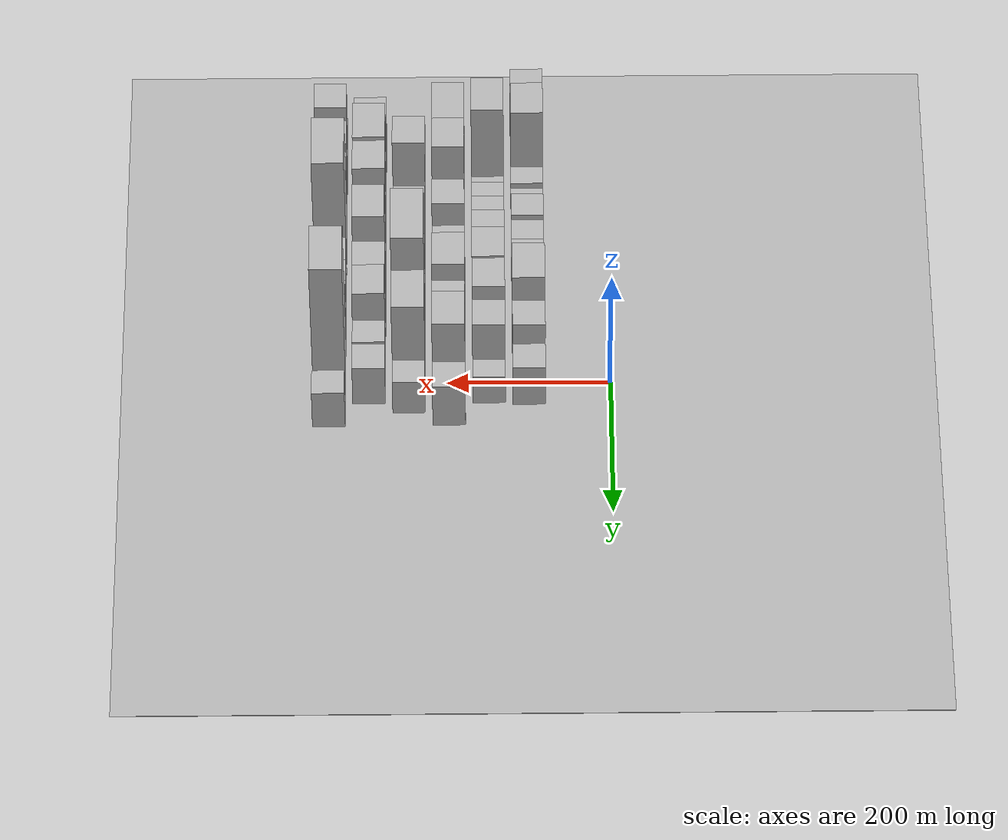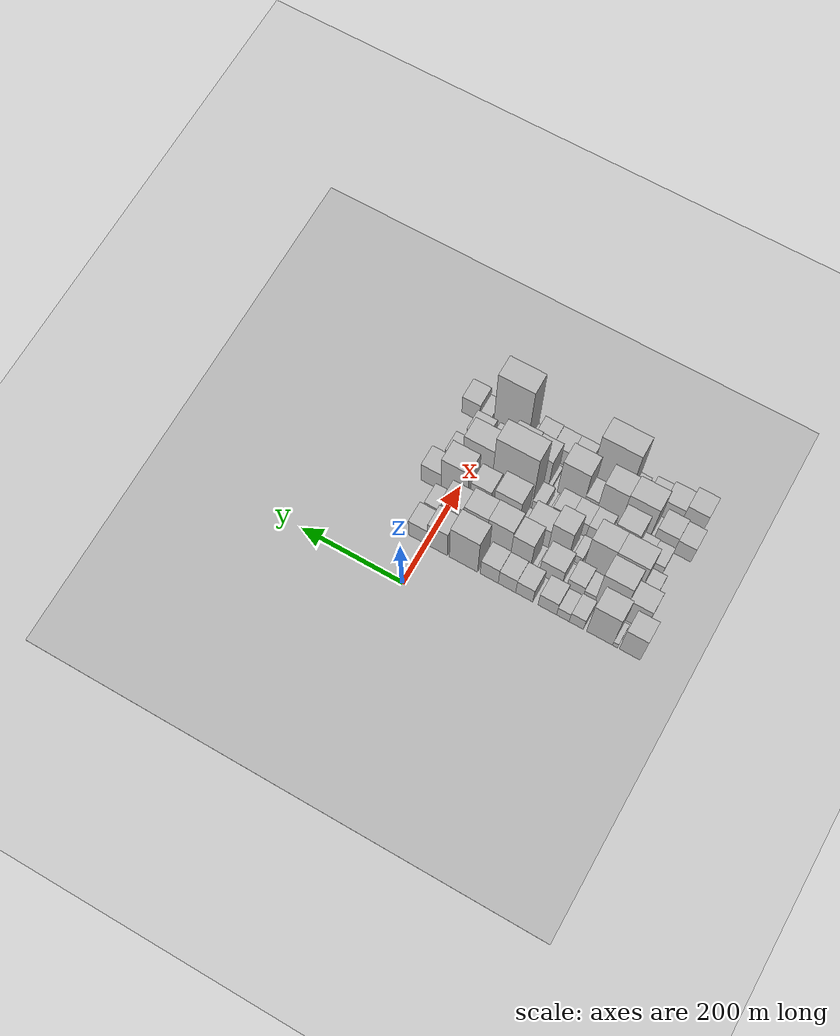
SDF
<sdf version="1.6">
 <world name="default">
  <include><name>ground_plane_1</name><uri>model://HANNAS_ground_plane</uri></include>
  <include>
   <name>ground_plane_2</name>
   <uri>model://HANNAS_ground_plane</uri>
   <pose>100 0 0  0 0 0</pose>
  </include>
  <model name="building_10">
   <static>1</static>
   <pose>100.0000 -393.0205 0 0.000000 0.000000 0.000000</pose>
   <link name="link">
    <pose>0 0 57.00 0 0 0</pose>
    <collision name="collision"><geometry><box><size>40.0000 39.4677 114.0000</size></box></geometry></collision>
    <visual name="visual">
     <cast_shadows>0</cast_shadows>
     <geometry><box><size>40.0000 39.4677 114.0000</size></box></geometry>
     <material>
      <script>
       <uri>model://HANNAS_wall/materials/scripts</uri>
       <uri>model://HANNAS_wall/materials/textures</uri>
       <name>vrc/HANNAS_wall</name>
      </script>
     </material>
    </visual>
   </link>
  </model>
  <model name="building_11">
   <static>1</static>
   <pose>100.0000 -365.6072 0 0.000000 0.000000 0.000000</pose>
   <link name="link">
    <pose>0 0 10.50 0 0 0</pose>
    <collision name="collision"><geometry><box><size>40.0000 9.3589 21.0000</size></box></geometry></collision>
    <visual name="visual">
     <cast_shadows>0</cast_shadows>
     <geometry><box><size>40.0000 9.3589 21.0000</size></box></geometry>
     <material>
      <script>
       <uri>model://HANNAS_wall/materials/scripts</uri>
       <uri>model://HANNAS_wall/materials/textures</uri>
       <name>vrc/HANNAS_wall</name>
      </script>
     </material>
    </visual>
   </link>
  </model>
  <model name="building_12">
   <static>1</static>
   <pose>100.0000 -336.2007 0 0.000000 0.000000 0.000000</pose>
   <link name="link">
    <pose>0 0 73.50 0 0 0</pose>
    <collision name="collision"><geometry><box><size>40.0000 49.4543 147.0000</size></box></geometry></collision>
    <visual name="visual">
     <cast_shadows>0</cast_shadows>
     <geometry><box><size>40.0000 49.4543 147.0000</size></box></geometry>
     <material>
      <script>
       <uri>model://HANNAS_wall/materials/scripts</uri>
       <uri>model://HANNAS_wall/materials/textures</uri>
       <name>vrc/HANNAS_wall</name>
      </script>
     </material>
    </visual>
   </link>
  </model>
  <model name="building_13">
   <static>1</static>
   <pose>100.0000 -291.9677 0 0.000000 0.000000 0.000000</pose>
   <link name="link">
    <pose>0 0 25.50 0 0 0</pose>
    <collision name="collision"><geometry><box><size>40.0000 27.0116 51.0000</size></box></geometry></collision>
    <visual name="visual">
     <cast_shadows>0</cast_shadows>
     <geometry><box><size>40.0000 27.0116 51.0000</size></box></geometry>
     <material>
      <script>
       <uri>model://HANNAS_wall/materials/scripts</uri>
       <uri>model://HANNAS_wall/materials/textures</uri>
       <name>vrc/HANNAS_wall</name>
      </script>
     </material>
    </visual>
   </link>
  </model>
  <model name="building_14">
   <static>1</static>
   <pose>100.0000 -266.3513 0 0.000000 0.000000 0.000000</pose>
   <link name="link">
    <pose>0 0 21.00 0 0 0</pose>
    <collision name="collision"><geometry><box><size>40.0000 24.2213 42.0000</size></box></geometry></collision>
    <visual name="visual">
     <cast_shadows>0</cast_shadows>
     <geometry><box><size>40.0000 24.2213 42.0000</size></box></geometry>
     <material>
      <script>
       <uri>model://HANNAS_wall/materials/scripts</uri>
       <uri>model://HANNAS_wall/materials/textures</uri>
       <name>vrc/HANNAS_wall</name>
      </script>
     </material>
    </visual>
   </link>
  </model>
  <model name="building_15">
   <static>1</static>
   <pose>100.0000 -236.4188 0 0.000000 0.000000 0.000000</pose>
   <link name="link">
    <pose>0 0 30.00 0 0 0</pose>
    <collision name="collision"><geometry><box><size>40.0000 35.6436 60.0000</size></box></geometry></collision>
    <visual name="visual">
     <cast_shadows>0</cast_shadows>
     <geometry><box><size>40.0000 35.6436 60.0000</size></box></geometry>
     <material>
      <script>
       <uri>model://HANNAS_wall/materials/scripts</uri>
       <uri>model://HANNAS_wall/materials/textures</uri>
       <name>vrc/HANNAS_wall</name>
      </script>
     </material>
    </visual>
   </link>
  </model>
  <model name="building_16">
   <static>1</static>
   <pose>100.0000 -192.0225 0 0.000000 0.000000 0.000000</pose>
   <link name="link">
    <pose>0 0 31.50 0 0 0</pose>
    <collision name="collision"><geometry><box><size>40.0000 33.1490 63.0000</size></box></geometry></collision>
    <visual name="visual">
     <cast_shadows>0</cast_shadows>
     <geometry><box><size>40.0000 33.1490 63.0000</size></box></geometry>
     <material>
      <script>
       <uri>model://HANNAS_wall/materials/scripts</uri>
       <uri>model://HANNAS_wall/materials/textures</uri>
       <name>vrc/HANNAS_wall</name>
      </script>
     </material>
    </visual>
   </link>
  </model>
  <model name="building_17">
   <static>1</static>
   <pose>100.0000 -158.6451 0 0.000000 0.000000 0.000000</pose>
   <link name="link">
    <pose>0 0 33.00 0 0 0</pose>
    <collision name="collision"><geometry><box><size>40.0000 33.6058 66.0000</size></box></geometry></collision>
    <visual name="visual">
     <cast_shadows>0</cast_shadows>
     <geometry><box><size>40.0000 33.6058 66.0000</size></box></geometry>
     <material>
      <script>
       <uri>model://HANNAS_wall/materials/scripts</uri>
       <uri>model://HANNAS_wall/materials/textures</uri>
       <name>vrc/HANNAS_wall</name>
      </script>
     </material>
    </visual>
   </link>
  </model>
  <model name="building_18">
   <static>1</static>
   <pose>100.0000 -124.2593 0 0.000000 0.000000 0.000000</pose>
   <link name="link">
    <pose>0 0 34.50 0 0 0</pose>
    <collision name="collision"><geometry><box><size>40.0000 35.1658 69.0000</size></box></geometry></collision>
    <visual name="visual">
     <cast_shadows>0</cast_shadows>
     <geometry><box><size>40.0000 35.1658 69.0000</size></box></geometry>
     <material>
      <script>
       <uri>model://HANNAS_wall/materials/scripts</uri>
       <uri>model://HANNAS_wall/materials/textures</uri>
       <name>vrc/HANNAS_wall</name>
      </script>
     </material>
    </visual>
   </link>
  </model>
  <model name="building_19">
   <static>1</static>
   <pose>100.0000 -74.0402 0 0.000000 0.000000 0.000000</pose>
   <link name="link">
    <pose>0 0 73.50 0 0 0</pose>
    <collision name="collision"><geometry><box><size>40.0000 55.2724 147.0000</size></box></geometry></collision>
    <visual name="visual">
     <cast_shadows>0</cast_shadows>
     <geometry><box><size>40.0000 55.2724 147.0000</size></box></geometry>
     <material>
      <script>
       <uri>model://HANNAS_wall/materials/scripts</uri>
       <uri>model://HANNAS_wall/materials/textures</uri>
       <name>vrc/HANNAS_wall</name>
      </script>
     </material>
    </visual>
   </link>
  </model>
  <model name="building_20">
   <static>1</static>
   <pose>100.0000 -23.1641 0 0.000000 0.000000 0.000000</pose>
   <link name="link">
    <pose>0 0 54.00 0 0 0</pose>
    <collision name="collision"><geometry><box><size>40.0000 38.4799 108.0000</size></box></geometry></collision>
    <visual name="visual">
     <cast_shadows>0</cast_shadows>
     <geometry><box><size>40.0000 38.4799 108.0000</size></box></geometry>
     <material>
      <script>
       <uri>model://HANNAS_wall/materials/scripts</uri>
       <uri>model://HANNAS_wall/materials/textures</uri>
       <name>vrc/HANNAS_wall</name>
      </script>
     </material>
    </visual>
   </link>
  </model>
  <model name="building_21">
   <static>1</static>
   <pose>100.0000 14.8848 0 0.000000 0.000000 0.000000</pose>
   <link name="link">
    <pose>0 0 36.00 0 0 0</pose>
    <collision name="collision"><geometry><box><size>40.0000 37.6179 72.0000</size></box></geometry></collision>
    <visual name="visual">
     <cast_shadows>0</cast_shadows>
     <geometry><box><size>40.0000 37.6179 72.0000</size></box></geometry>
     <material>
      <script>
       <uri>model://HANNAS_wall/materials/scripts</uri>
       <uri>model://HANNAS_wall/materials/textures</uri>
       <name>vrc/HANNAS_wall</name>
      </script>
     </material>
    </visual>
   </link>
  </model>
  <model name="building_55">
   <static>1</static>
   <pose>149.0000 -375.3087 0 0.000000 0.000000 0.000000</pose>
   <link name="link">
    <pose>0 0 54.00 0 0 0</pose>
    <collision name="collision"><geometry><box><size>40.0000 43.1898 108.0000</size></box></geometry></collision>
    <visual name="visual">
     <cast_shadows>0</cast_shadows>
     <geometry><box><size>40.0000 43.1898 108.0000</size></box></geometry>
     <material>
      <script>
       <uri>model://HANNAS_wall/materials/scripts</uri>
       <uri>model://HANNAS_wall/materials/textures</uri>
       <name>vrc/HANNAS_wall</name>
      </script>
     </material>
    </visual>
   </link>
  </model>
  <model name="building_56">
   <static>1</static>
   <pose>149.0000 -327.1030 0 0.000000 0.000000 0.000000</pose>
   <link name="link">
    <pose>0 0 82.50 0 0 0</pose>
    <collision name="collision"><geometry><box><size>40.0000 53.2216 165.0000</size></box></geometry></collision>
    <visual name="visual">
     <cast_shadows>0</cast_shadows>
     <geometry><box><size>40.0000 53.2216 165.0000</size></box></geometry>
     <material>
      <script>
       <uri>model://HANNAS_wall/materials/scripts</uri>
       <uri>model://HANNAS_wall/materials/textures</uri>
       <name>vrc/HANNAS_wall</name>
      </script>
     </material>
    </visual>
   </link>
  </model>
  <model name="building_57">
   <static>1</static>
   <pose>149.0000 -289.4607 0 0.000000 0.000000 0.000000</pose>
   <link name="link">
    <pose>0 0 19.50 0 0 0</pose>
    <collision name="collision"><geometry><box><size>40.0000 22.0631 39.0000</size></box></geometry></collision>
    <visual name="visual">
     <cast_shadows>0</cast_shadows>
     <geometry><box><size>40.0000 22.0631 39.0000</size></box></geometry>
     <material>
      <script>
       <uri>model://HANNAS_wall/materials/scripts</uri>
       <uri>model://HANNAS_wall/materials/textures</uri>
       <name>vrc/HANNAS_wall</name>
      </script>
     </material>
    </visual>
   </link>
  </model>
  <model name="building_58">
   <static>1</static>
   <pose>149.0000 -262.5375 0 0.000000 0.000000 0.000000</pose>
   <link name="link">
    <pose>0 0 27.00 0 0 0</pose>
    <collision name="collision"><geometry><box><size>40.0000 31.7833 54.0000</size></box></geometry></collision>
    <visual name="visual">
     <cast_shadows>0</cast_shadows>
     <geometry><box><size>40.0000 31.7833 54.0000</size></box></geometry>
     <material>
      <script>
       <uri>model://HANNAS_wall/materials/scripts</uri>
       <uri>model://HANNAS_wall/materials/textures</uri>
       <name>vrc/HANNAS_wall</name>
      </script>
     </material>
    </visual>
   </link>
  </model>
  <model name="building_59">
   <static>1</static>
   <pose>149.0000 -242.3746 0 0.000000 0.000000 0.000000</pose>
   <link name="link">
    <pose>0 0 9.00 0 0 0</pose>
    <collision name="collision"><geometry><box><size>40.0000 8.5425 18.0000</size></box></geometry></collision>
    <visual name="visual">
     <cast_shadows>0</cast_shadows>
     <geometry><box><size>40.0000 8.5425 18.0000</size></box></geometry>
     <material>
      <script>
       <uri>model://HANNAS_wall/materials/scripts</uri>
       <uri>model://HANNAS_wall/materials/textures</uri>
       <name>vrc/HANNAS_wall</name>
      </script>
     </material>
    </visual>
   </link>
  </model>
  <model name="building_60">
   <static>1</static>
   <pose>149.0000 -215.9999 0 0.000000 0.000000 0.000000</pose>
   <link name="link">
    <pose>0 0 37.50 0 0 0</pose>
    <collision name="collision"><geometry><box><size>40.0000 44.2071 75.0000</size></box></geometry></collision>
    <visual name="visual">
     <cast_shadows>0</cast_shadows>
     <geometry><box><size>40.0000 44.2071 75.0000</size></box></geometry>
     <material>
      <script>
       <uri>model://HANNAS_wall/materials/scripts</uri>
       <uri>model://HANNAS_wall/materials/textures</uri>
       <name>vrc/HANNAS_wall</name>
      </script>
     </material>
    </visual>
   </link>
  </model>
  <model name="building_61">
   <static>1</static>
   <pose>149.0000 -190.4918 0 0.000000 0.000000 0.000000</pose>
   <link name="link">
    <pose>0 0 7.50 0 0 0</pose>
    <collision name="collision"><geometry><box><size>40.0000 6.8092 15.0000</size></box></geometry></collision>
    <visual name="visual">
     <cast_shadows>0</cast_shadows>
     <geometry><box><size>40.0000 6.8092 15.0000</size></box></geometry>
     <material>
      <script>
       <uri>model://HANNAS_wall/materials/scripts</uri>
       <uri>model://HANNAS_wall/materials/textures</uri>
       <name>vrc/HANNAS_wall</name>
      </script>
     </material>
    </visual>
   </link>
  </model>
  <model name="building_62">
   <static>1</static>
   <pose>149.0000 -157.5318 0 0.000000 0.000000 0.000000</pose>
   <link name="link">
    <pose>0 0 60.00 0 0 0</pose>
    <collision name="collision"><geometry><box><size>40.0000 39.1107 120.0000</size></box></geometry></collision>
    <visual name="visual">
     <cast_shadows>0</cast_shadows>
     <geometry><box><size>40.0000 39.1107 120.0000</size></box></geometry>
     <material>
      <script>
       <uri>model://HANNAS_wall/materials/scripts</uri>
       <uri>model://HANNAS_wall/materials/textures</uri>
       <name>vrc/HANNAS_wall</name>
      </script>
     </material>
    </visual>
   </link>
  </model>
  <model name="building_63">
   <static>1</static>
   <pose>149.0000 -114.3413 0 0.000000 0.000000 0.000000</pose>
   <link name="link">
    <pose>0 0 67.50 0 0 0</pose>
    <collision name="collision"><geometry><box><size>40.0000 47.2702 135.0000</size></box></geometry></collision>
    <visual name="visual">
     <cast_shadows>0</cast_shadows>
     <geometry><box><size>40.0000 47.2702 135.0000</size></box></geometry>
     <material>
      <script>
       <uri>model://HANNAS_wall/materials/scripts</uri>
       <uri>model://HANNAS_wall/materials/textures</uri>
       <name>vrc/HANNAS_wall</name>
      </script>
     </material>
    </visual>
   </link>
  </model>
  <model name="building_64">
   <static>1</static>
   <pose>149.0000 -67.8668 0 0.000000 0.000000 0.000000</pose>
   <link name="link">
    <pose>0 0 66.00 0 0 0</pose>
    <collision name="collision"><geometry><box><size>40.0000 45.6789 132.0000</size></box></geometry></collision>
    <visual name="visual">
     <cast_shadows>0</cast_shadows>
     <geometry><box><size>40.0000 45.6789 132.0000</size></box></geometry>
     <material>
      <script>
       <uri>model://HANNAS_wall/materials/scripts</uri>
       <uri>model://HANNAS_wall/materials/textures</uri>
       <name>vrc/HANNAS_wall</name>
      </script>
     </material>
    </visual>
   </link>
  </model>
  <model name="building_65">
   <static>1</static>
   <pose>149.0000 -22.2421 0 0.000000 0.000000 0.000000</pose>
   <link name="link">
    <pose>0 0 55.50 0 0 0</pose>
    <collision name="collision"><geometry><box><size>40.0000 39.5703 111.0000</size></box></geometry></collision>
    <visual name="visual">
     <cast_shadows>0</cast_shadows>
     <geometry><box><size>40.0000 39.5703 111.0000</size></box></geometry>
     <material>
      <script>
       <uri>model://HANNAS_wall/materials/scripts</uri>
       <uri>model://HANNAS_wall/materials/textures</uri>
       <name>vrc/HANNAS_wall</name>
      </script>
     </material>
    </visual>
   </link>
  </model>
  <model name="building_66">
   <static>1</static>
   <pose>149.0000 17.1953 0 0.000000 0.000000 0.000000</pose>
   <link name="link">
    <pose>0 0 25.50 0 0 0</pose>
    <collision name="collision"><geometry><box><size>40.0000 27.3047 51.0000</size></box></geometry></collision>
    <visual name="visual">
     <cast_shadows>0</cast_shadows>
     <geometry><box><size>40.0000 27.3047 51.0000</size></box></geometry>
     <material>
      <script>
       <uri>model://HANNAS_wall/materials/scripts</uri>
       <uri>model://HANNAS_wall/materials/textures</uri>
       <name>vrc/HANNAS_wall</name>
      </script>
     </material>
    </visual>
   </link>
  </model>
  <model name="building_99">
   <static>1</static>
   <pose>198.0000 -373.5648 0 0.000000 0.000000 0.000000</pose>
   <link name="link">
    <pose>0 0 24.00 0 0 0</pose>
    <collision name="collision"><geometry><box><size>40.0000 27.1789 48.0000</size></box></geometry></collision>
    <visual name="visual">
     <cast_shadows>0</cast_shadows>
     <geometry><box><size>40.0000 27.1789 48.0000</size></box></geometry>
     <material>
      <script>
       <uri>model://HANNAS_wall/materials/scripts</uri>
       <uri>model://HANNAS_wall/materials/textures</uri>
       <name>vrc/HANNAS_wall</name>
      </script>
     </material>
    </visual>
   </link>
  </model>
  <model name="building_100">
   <static>1</static>
   <pose>198.0000 -330.6645 0 0.000000 0.000000 0.000000</pose>
   <link name="link">
    <pose>0 0 75.00 0 0 0</pose>
    <collision name="collision"><geometry><box><size>40.0000 58.6218 150.0000</size></box></geometry></collision>
    <visual name="visual">
     <cast_shadows>0</cast_shadows>
     <geometry><box><size>40.0000 58.6218 150.0000</size></box></geometry>
     <material>
      <script>
       <uri>model://HANNAS_wall/materials/scripts</uri>
       <uri>model://HANNAS_wall/materials/textures</uri>
       <name>vrc/HANNAS_wall</name>
      </script>
     </material>
    </visual>
   </link>
  </model>
  <model name="building_101">
   <static>1</static>
   <pose>198.0000 -277.6675 0 0.000000 0.000000 0.000000</pose>
   <link name="link">
    <pose>0 0 75.00 0 0 0</pose>
    <collision name="collision"><geometry><box><size>40.0000 47.3722 150.0000</size></box></geometry></collision>
    <visual name="visual">
     <cast_shadows>0</cast_shadows>
     <geometry><box><size>40.0000 47.3722 150.0000</size></box></geometry>
     <material>
      <script>
       <uri>model://HANNAS_wall/materials/scripts</uri>
       <uri>model://HANNAS_wall/materials/textures</uri>
       <name>vrc/HANNAS_wall</name>
      </script>
     </material>
    </visual>
   </link>
  </model>
  <model name="building_102">
   <static>1</static>
   <pose>198.0000 -240.9168 0 0.000000 0.000000 0.000000</pose>
   <link name="link">
    <pose>0 0 18.00 0 0 0</pose>
    <collision name="collision"><geometry><box><size>40.0000 18.1293 36.0000</size></box></geometry></collision>
    <visual name="visual">
     <cast_shadows>0</cast_shadows>
     <geometry><box><size>40.0000 18.1293 36.0000</size></box></geometry>
     <material>
      <script>
       <uri>model://HANNAS_wall/materials/scripts</uri>
       <uri>model://HANNAS_wall/materials/textures</uri>
       <name>vrc/HANNAS_wall</name>
      </script>
     </material>
    </visual>
   </link>
  </model>
  <model name="building_103">
   <static>1</static>
   <pose>198.0000 -205.2242 0 0.000000 0.000000 0.000000</pose>
   <link name="link">
    <pose>0 0 61.50 0 0 0</pose>
    <collision name="collision"><geometry><box><size>40.0000 39.2560 123.0000</size></box></geometry></collision>
    <visual name="visual">
     <cast_shadows>0</cast_shadows>
     <geometry><box><size>40.0000 39.2560 123.0000</size></box></geometry>
     <material>
      <script>
       <uri>model://HANNAS_wall/materials/scripts</uri>
       <uri>model://HANNAS_wall/materials/textures</uri>
       <name>vrc/HANNAS_wall</name>
      </script>
     </material>
    </visual>
   </link>
  </model>
  <model name="building_104">
   <static>1</static>
   <pose>198.0000 -162.3133 0 0.000000 0.000000 0.000000</pose>
   <link name="link">
    <pose>0 0 40.50 0 0 0</pose>
    <collision name="collision"><geometry><box><size>40.0000 46.5659 81.0000</size></box></geometry></collision>
    <visual name="visual">
     <cast_shadows>0</cast_shadows>
     <geometry><box><size>40.0000 46.5659 81.0000</size></box></geometry>
     <material>
      <script>
       <uri>model://HANNAS_wall/materials/scripts</uri>
       <uri>model://HANNAS_wall/materials/textures</uri>
       <name>vrc/HANNAS_wall</name>
      </script>
     </material>
    </visual>
   </link>
  </model>
  <model name="building_105">
   <static>1</static>
   <pose>198.0000 -132.8435 0 0.000000 0.000000 0.000000</pose>
   <link name="link">
    <pose>0 0 13.50 0 0 0</pose>
    <collision name="collision"><geometry><box><size>40.0000 12.3736 27.0000</size></box></geometry></collision>
    <visual name="visual">
     <cast_shadows>0</cast_shadows>
     <geometry><box><size>40.0000 12.3736 27.0000</size></box></geometry>
     <material>
      <script>
       <uri>model://HANNAS_wall/materials/scripts</uri>
       <uri>model://HANNAS_wall/materials/textures</uri>
       <name>vrc/HANNAS_wall</name>
      </script>
     </material>
    </visual>
   </link>
  </model>
  <model name="building_106">
   <static>1</static>
   <pose>198.0000 -101.4459 0 0.000000 0.000000 0.000000</pose>
   <link name="link">
    <pose>0 0 69.00 0 0 0</pose>
    <collision name="collision"><geometry><box><size>40.0000 50.4218 138.0000</size></box></geometry></collision>
    <visual name="visual">
     <cast_shadows>0</cast_shadows>
     <geometry><box><size>40.0000 50.4218 138.0000</size></box></geometry>
     <material>
      <script>
       <uri>model://HANNAS_wall/materials/scripts</uri>
       <uri>model://HANNAS_wall/materials/textures</uri>
       <name>vrc/HANNAS_wall</name>
      </script>
     </material>
    </visual>
   </link>
  </model>
  <model name="building_107">
   <static>1</static>
   <pose>198.0000 -50.8837 0 0.000000 0.000000 0.000000</pose>
   <link name="link">
    <pose>0 0 57.00 0 0 0</pose>
    <collision name="collision"><geometry><box><size>40.0000 38.7026 114.0000</size></box></geometry></collision>
    <visual name="visual">
     <cast_shadows>0</cast_shadows>
     <geometry><box><size>40.0000 38.7026 114.0000</size></box></geometry>
     <material>
      <script>
       <uri>model://HANNAS_wall/materials/scripts</uri>
       <uri>model://HANNAS_wall/materials/textures</uri>
       <name>vrc/HANNAS_wall</name>
      </script>
     </material>
    </visual>
   </link>
  </model>
  <model name="building_108">
   <static>1</static>
   <pose>198.0000 -0.3977 0 0.000000 0.000000 0.000000</pose>
   <link name="link">
    <pose>0 0 73.50 0 0 0</pose>
    <collision name="collision"><geometry><box><size>40.0000 52.2694 147.0000</size></box></geometry></collision>
    <visual name="visual">
     <cast_shadows>0</cast_shadows>
     <geometry><box><size>40.0000 52.2694 147.0000</size></box></geometry>
     <material>
      <script>
       <uri>model://HANNAS_wall/materials/scripts</uri>
       <uri>model://HANNAS_wall/materials/textures</uri>
       <name>vrc/HANNAS_wall</name>
      </script>
     </material>
    </visual>
   </link>
  </model>
  <model name="building_109">
   <static>1</static>
   <pose>198.0000 45.4231 0 0.000000 0.000000 0.000000</pose>
   <link name="link">
    <pose>0 0 37.50 0 0 0</pose>
    <collision name="collision"><geometry><box><size>40.0000 39.3724 75.0000</size></box></geometry></collision>
    <visual name="visual">
     <cast_shadows>0</cast_shadows>
     <geometry><box><size>40.0000 39.3724 75.0000</size></box></geometry>
     <material>
      <script>
       <uri>model://HANNAS_wall/materials/scripts</uri>
       <uri>model://HANNAS_wall/materials/textures</uri>
       <name>vrc/HANNAS_wall</name>
      </script>
     </material>
    </visual>
   </link>
  </model>
  <model name="building_145">
   <static>1</static>
   <pose>247.0000 -362.6014 0 0.000000 0.000000 0.000000</pose>
   <link name="link">
    <pose>0 0 25.50 0 0 0</pose>
    <collision name="collision"><geometry><box><size>40.0000 29.0980 51.0000</size></box></geometry></collision>
    <visual name="visual">
     <cast_shadows>0</cast_shadows>
     <geometry><box><size>40.0000 29.0980 51.0000</size></box></geometry>
     <material>
      <script>
       <uri>model://HANNAS_wall/materials/scripts</uri>
       <uri>model://HANNAS_wall/materials/textures</uri>
       <name>vrc/HANNAS_wall</name>
      </script>
     </material>
    </visual>
   </link>
  </model>
  <model name="building_146">
   <static>1</static>
   <pose>247.0000 -334.2558 0 0.000000 0.000000 0.000000</pose>
   <link name="link">
    <pose>0 0 27.00 0 0 0</pose>
    <collision name="collision"><geometry><box><size>40.0000 27.5932 54.0000</size></box></geometry></collision>
    <visual name="visual">
     <cast_shadows>0</cast_shadows>
     <geometry><box><size>40.0000 27.5932 54.0000</size></box></geometry>
     <material>
      <script>
       <uri>model://HANNAS_wall/materials/scripts</uri>
       <uri>model://HANNAS_wall/materials/textures</uri>
       <name>vrc/HANNAS_wall</name>
      </script>
     </material>
    </visual>
   </link>
  </model>
  <model name="building_147">
   <static>1</static>
   <pose>247.0000 -298.5102 0 0.000000 0.000000 0.000000</pose>
   <link name="link">
    <pose>0 0 66.00 0 0 0</pose>
    <collision name="collision"><geometry><box><size>40.0000 43.8980 132.0000</size></box></geometry></collision>
    <visual name="visual">
     <cast_shadows>0</cast_shadows>
     <geometry><box><size>40.0000 43.8980 132.0000</size></box></geometry>
     <material>
      <script>
       <uri>model://HANNAS_wall/materials/scripts</uri>
       <uri>model://HANNAS_wall/materials/textures</uri>
       <name>vrc/HANNAS_wall</name>
      </script>
     </material>
    </visual>
   </link>
  </model>
  <model name="building_148">
   <static>1</static>
   <pose>247.0000 -250.0658 0 0.000000 0.000000 0.000000</pose>
   <link name="link">
    <pose>0 0 30.00 0 0 0</pose>
    <collision name="collision"><geometry><box><size>40.0000 34.9907 60.0000</size></box></geometry></collision>
    <visual name="visual">
     <cast_shadows>0</cast_shadows>
     <geometry><box><size>40.0000 34.9907 60.0000</size></box></geometry>
     <material>
      <script>
       <uri>model://HANNAS_wall/materials/scripts</uri>
       <uri>model://HANNAS_wall/materials/textures</uri>
       <name>vrc/HANNAS_wall</name>
      </script>
     </material>
    </visual>
   </link>
  </model>
  <model name="building_149">
   <static>1</static>
   <pose>247.0000 -215.6099 0 0.000000 0.000000 0.000000</pose>
   <link name="link">
    <pose>0 0 30.00 0 0 0</pose>
    <collision name="collision"><geometry><box><size>40.0000 33.9211 60.0000</size></box></geometry></collision>
    <visual name="visual">
     <cast_shadows>0</cast_shadows>
     <geometry><box><size>40.0000 33.9211 60.0000</size></box></geometry>
     <material>
      <script>
       <uri>model://HANNAS_wall/materials/scripts</uri>
       <uri>model://HANNAS_wall/materials/textures</uri>
       <name>vrc/HANNAS_wall</name>
      </script>
     </material>
    </visual>
   </link>
  </model>
  <model name="building_150">
   <static>1</static>
   <pose>247.0000 -181.7348 0 0.000000 0.000000 0.000000</pose>
   <link name="link">
    <pose>0 0 30.00 0 0 0</pose>
    <collision name="collision"><geometry><box><size>40.0000 33.8291 60.0000</size></box></geometry></collision>
    <visual name="visual">
     <cast_shadows>0</cast_shadows>
     <geometry><box><size>40.0000 33.8291 60.0000</size></box></geometry>
     <material>
      <script>
       <uri>model://HANNAS_wall/materials/scripts</uri>
       <uri>model://HANNAS_wall/materials/textures</uri>
       <name>vrc/HANNAS_wall</name>
      </script>
     </material>
    </visual>
   </link>
  </model>
  <model name="building_151">
   <static>1</static>
   <pose>247.0000 -161.1143 0 0.000000 0.000000 0.000000</pose>
   <link name="link">
    <pose>0 0 9.00 0 0 0</pose>
    <collision name="collision"><geometry><box><size>40.0000 7.4119 18.0000</size></box></geometry></collision>
    <visual name="visual">
     <cast_shadows>0</cast_shadows>
     <geometry><box><size>40.0000 7.4119 18.0000</size></box></geometry>
     <material>
      <script>
       <uri>model://HANNAS_wall/materials/scripts</uri>
       <uri>model://HANNAS_wall/materials/textures</uri>
       <name>vrc/HANNAS_wall</name>
      </script>
     </material>
    </visual>
   </link>
  </model>
  <model name="building_152">
   <static>1</static>
   <pose>247.0000 -138.0199 0 0.000000 0.000000 0.000000</pose>
   <link name="link">
    <pose>0 0 19.50 0 0 0</pose>
    <collision name="collision"><geometry><box><size>40.0000 22.7769 39.0000</size></box></geometry></collision>
    <visual name="visual">
     <cast_shadows>0</cast_shadows>
     <geometry><box><size>40.0000 22.7769 39.0000</size></box></geometry>
     <material>
      <script>
       <uri>model://HANNAS_wall/materials/scripts</uri>
       <uri>model://HANNAS_wall/materials/textures</uri>
       <name>vrc/HANNAS_wall</name>
      </script>
     </material>
    </visual>
   </link>
  </model>
  <model name="building_153">
   <static>1</static>
   <pose>247.0000 -86.9928 0 0.000000 0.000000 0.000000</pose>
   <link name="link">
    <pose>0 0 111.00 0 0 0</pose>
    <collision name="collision"><geometry><box><size>40.0000 79.2772 222.0000</size></box></geometry></collision>
    <visual name="visual">
     <cast_shadows>0</cast_shadows>
     <geometry><box><size>40.0000 79.2772 222.0000</size></box></geometry>
     <material>
      <script>
       <uri>model://HANNAS_wall/materials/scripts</uri>
       <uri>model://HANNAS_wall/materials/textures</uri>
       <name>vrc/HANNAS_wall</name>
      </script>
     </material>
    </visual>
   </link>
  </model>
  <model name="building_154">
   <static>1</static>
   <pose>247.0000 -18.3583 0 0.000000 0.000000 0.000000</pose>
   <link name="link">
    <pose>0 0 81.00 0 0 0</pose>
    <collision name="collision"><geometry><box><size>40.0000 57.9919 162.0000</size></box></geometry></collision>
    <visual name="visual">
     <cast_shadows>0</cast_shadows>
     <geometry><box><size>40.0000 57.9919 162.0000</size></box></geometry>
     <material>
      <script>
       <uri>model://HANNAS_wall/materials/scripts</uri>
       <uri>model://HANNAS_wall/materials/textures</uri>
       <name>vrc/HANNAS_wall</name>
      </script>
     </material>
    </visual>
   </link>
  </model>
  <model name="building_155">
   <static>1</static>
   <pose>247.0000 28.0868 0 0.000000 0.000000 0.000000</pose>
   <link name="link">
    <pose>0 0 30.00 0 0 0</pose>
    <collision name="collision"><geometry><box><size>40.0000 34.8982 60.0000</size></box></geometry></collision>
    <visual name="visual">
     <cast_shadows>0</cast_shadows>
     <geometry><box><size>40.0000 34.8982 60.0000</size></box></geometry>
     <material>
      <script>
       <uri>model://HANNAS_wall/materials/scripts</uri>
       <uri>model://HANNAS_wall/materials/textures</uri>
       <name>vrc/HANNAS_wall</name>
      </script>
     </material>
    </visual>
   </link>
  </model>
  <model name="building_194">
   <static>1</static>
   <pose>296.0000 -392.7342 0 0.000000 0.000000 0.000000</pose>
   <link name="link">
    <pose>0 0 33.00 0 0 0</pose>
    <collision name="collision"><geometry><box><size>40.0000 33.5156 66.0000</size></box></geometry></collision>
    <visual name="visual">
     <cast_shadows>0</cast_shadows>
     <geometry><box><size>40.0000 33.5156 66.0000</size></box></geometry>
     <material>
      <script>
       <uri>model://HANNAS_wall/materials/scripts</uri>
       <uri>model://HANNAS_wall/materials/textures</uri>
       <name>vrc/HANNAS_wall</name>
      </script>
     </material>
    </visual>
   </link>
  </model>
  <model name="building_195">
   <static>1</static>
   <pose>296.0000 -356.0504 0 0.000000 0.000000 0.000000</pose>
   <link name="link">
    <pose>0 0 36.00 0 0 0</pose>
    <collision name="collision"><geometry><box><size>40.0000 39.8519 72.0000</size></box></geometry></collision>
    <visual name="visual">
     <cast_shadows>0</cast_shadows>
     <geometry><box><size>40.0000 39.8519 72.0000</size></box></geometry>
     <material>
      <script>
       <uri>model://HANNAS_wall/materials/scripts</uri>
       <uri>model://HANNAS_wall/materials/textures</uri>
       <name>vrc/HANNAS_wall</name>
      </script>
     </material>
    </visual>
   </link>
  </model>
  <model name="building_196">
   <static>1</static>
   <pose>296.0000 -301.2869 0 0.000000 0.000000 0.000000</pose>
   <link name="link">
    <pose>0 0 73.50 0 0 0</pose>
    <collision name="collision"><geometry><box><size>40.0000 55.6752 147.0000</size></box></geometry></collision>
    <visual name="visual">
     <cast_shadows>0</cast_shadows>
     <geometry><box><size>40.0000 55.6752 147.0000</size></box></geometry>
     <material>
      <script>
       <uri>model://HANNAS_wall/materials/scripts</uri>
       <uri>model://HANNAS_wall/materials/textures</uri>
       <name>vrc/HANNAS_wall</name>
      </script>
     </material>
    </visual>
   </link>
  </model>
  <model name="building_197">
   <static>1</static>
   <pose>296.0000 -250.4628 0 0.000000 0.000000 0.000000</pose>
   <link name="link">
    <pose>0 0 70.50 0 0 0</pose>
    <collision name="collision"><geometry><box><size>40.0000 45.9731 141.0000</size></box></geometry></collision>
    <visual name="visual">
     <cast_shadows>0</cast_shadows>
     <geometry><box><size>40.0000 45.9731 141.0000</size></box></geometry>
     <material>
      <script>
       <uri>model://HANNAS_wall/materials/scripts</uri>
       <uri>model://HANNAS_wall/materials/textures</uri>
       <name>vrc/HANNAS_wall</name>
      </script>
     </material>
    </visual>
   </link>
  </model>
  <model name="building_198">
   <static>1</static>
   <pose>296.0000 -214.9254 0 0.000000 0.000000 0.000000</pose>
   <link name="link">
    <pose>0 0 24.00 0 0 0</pose>
    <collision name="collision"><geometry><box><size>40.0000 25.1018 48.0000</size></box></geometry></collision>
    <visual name="visual">
     <cast_shadows>0</cast_shadows>
     <geometry><box><size>40.0000 25.1018 48.0000</size></box></geometry>
     <material>
      <script>
       <uri>model://HANNAS_wall/materials/scripts</uri>
       <uri>model://HANNAS_wall/materials/textures</uri>
       <name>vrc/HANNAS_wall</name>
      </script>
     </material>
    </visual>
   </link>
  </model>
  <model name="building_199">
   <static>1</static>
   <pose>296.0000 -176.4733 0 0.000000 0.000000 0.000000</pose>
   <link name="link">
    <pose>0 0 70.50 0 0 0</pose>
    <collision name="collision"><geometry><box><size>40.0000 51.8023 141.0000</size></box></geometry></collision>
    <visual name="visual">
     <cast_shadows>0</cast_shadows>
     <geometry><box><size>40.0000 51.8023 141.0000</size></box></geometry>
     <material>
      <script>
       <uri>model://HANNAS_wall/materials/scripts</uri>
       <uri>model://HANNAS_wall/materials/textures</uri>
       <name>vrc/HANNAS_wall</name>
      </script>
     </material>
    </visual>
   </link>
  </model>
  <model name="building_200">
   <static>1</static>
   <pose>296.0000 -136.9113 0 0.000000 0.000000 0.000000</pose>
   <link name="link">
    <pose>0 0 7.50 0 0 0</pose>
    <collision name="collision"><geometry><box><size>40.0000 7.3217 15.0000</size></box></geometry></collision>
    <visual name="visual">
     <cast_shadows>0</cast_shadows>
     <geometry><box><size>40.0000 7.3217 15.0000</size></box></geometry>
     <material>
      <script>
       <uri>model://HANNAS_wall/materials/scripts</uri>
       <uri>model://HANNAS_wall/materials/textures</uri>
       <name>vrc/HANNAS_wall</name>
      </script>
     </material>
    </visual>
   </link>
  </model>
  <model name="building_201">
   <static>1</static>
   <pose>296.0000 -113.5014 0 0.000000 0.000000 0.000000</pose>
   <link name="link">
    <pose>0 0 57.00 0 0 0</pose>
    <collision name="collision"><geometry><box><size>40.0000 39.4981 114.0000</size></box></geometry></collision>
    <visual name="visual">
     <cast_shadows>0</cast_shadows>
     <geometry><box><size>40.0000 39.4981 114.0000</size></box></geometry>
     <material>
      <script>
       <uri>model://HANNAS_wall/materials/scripts</uri>
       <uri>model://HANNAS_wall/materials/textures</uri>
       <name>vrc/HANNAS_wall</name>
      </script>
     </material>
    </visual>
   </link>
  </model>
  <model name="building_202">
   <static>1</static>
   <pose>296.0000 -70.6710 0 0.000000 0.000000 0.000000</pose>
   <link name="link">
    <pose>0 0 58.50 0 0 0</pose>
    <collision name="collision"><geometry><box><size>40.0000 46.1626 117.0000</size></box></geometry></collision>
    <visual name="visual">
     <cast_shadows>0</cast_shadows>
     <geometry><box><size>40.0000 46.1626 117.0000</size></box></geometry>
     <material>
      <script>
       <uri>model://HANNAS_wall/materials/scripts</uri>
       <uri>model://HANNAS_wall/materials/textures</uri>
       <name>vrc/HANNAS_wall</name>
      </script>
     </material>
    </visual>
   </link>
  </model>
  <model name="building_203">
   <static>1</static>
   <pose>296.0000 -30.3317 0 0.000000 0.000000 0.000000</pose>
   <link name="link">
    <pose>0 0 33.00 0 0 0</pose>
    <collision name="collision"><geometry><box><size>40.0000 34.5160 66.0000</size></box></geometry></collision>
    <visual name="visual">
     <cast_shadows>0</cast_shadows>
     <geometry><box><size>40.0000 34.5160 66.0000</size></box></geometry>
     <material>
      <script>
       <uri>model://HANNAS_wall/materials/scripts</uri>
       <uri>model://HANNAS_wall/materials/textures</uri>
       <name>vrc/HANNAS_wall</name>
      </script>
     </material>
    </visual>
   </link>
  </model>
  <model name="building_204">
   <static>1</static>
   <pose>296.0000 11.3584 0 0.000000 0.000000 0.000000</pose>
   <link name="link">
    <pose>0 0 34.50 0 0 0</pose>
    <collision name="collision"><geometry><box><size>40.0000 38.8642 69.0000</size></box></geometry></collision>
    <visual name="visual">
     <cast_shadows>0</cast_shadows>
     <geometry><box><size>40.0000 38.8642 69.0000</size></box></geometry>
     <material>
      <script>
       <uri>model://HANNAS_wall/materials/scripts</uri>
       <uri>model://HANNAS_wall/materials/textures</uri>
       <name>vrc/HANNAS_wall</name>
      </script>
     </material>
    </visual>
   </link>
  </model>
  <model name="building_245">
   <static>1</static>
   <pose>345.0000 -383.4216 0 0.000000 0.000000 0.000000</pose>
   <link name="link">
    <pose>0 0 49.50 0 0 0</pose>
    <collision name="collision"><geometry><box><size>40.0000 39.4802 99.0000</size></box></geometry></collision>
    <visual name="visual">
     <cast_shadows>0</cast_shadows>
     <geometry><box><size>40.0000 39.4802 99.0000</size></box></geometry>
     <material>
      <script>
       <uri>model://HANNAS_wall/materials/scripts</uri>
       <uri>model://HANNAS_wall/materials/textures</uri>
       <name>vrc/HANNAS_wall</name>
      </script>
     </material>
    </visual>
   </link>
  </model>
  <model name="building_246">
   <static>1</static>
   <pose>345.0000 -344.0782 0 0.000000 0.000000 0.000000</pose>
   <link name="link">
    <pose>0 0 37.50 0 0 0</pose>
    <collision name="collision"><geometry><box><size>40.0000 39.2066 75.0000</size></box></geometry></collision>
    <visual name="visual">
     <cast_shadows>0</cast_shadows>
     <geometry><box><size>40.0000 39.2066 75.0000</size></box></geometry>
     <material>
      <script>
       <uri>model://HANNAS_wall/materials/scripts</uri>
       <uri>model://HANNAS_wall/materials/textures</uri>
       <name>vrc/HANNAS_wall</name>
      </script>
     </material>
    </visual>
   </link>
  </model>
  <model name="building_247">
   <static>1</static>
   <pose>345.0000 -309.0054 0 0.000000 0.000000 0.000000</pose>
   <link name="link">
    <pose>0 0 30.00 0 0 0</pose>
    <collision name="collision"><geometry><box><size>40.0000 30.9390 60.0000</size></box></geometry></collision>
    <visual name="visual">
     <cast_shadows>0</cast_shadows>
     <geometry><box><size>40.0000 30.9390 60.0000</size></box></geometry>
     <material>
      <script>
       <uri>model://HANNAS_wall/materials/scripts</uri>
       <uri>model://HANNAS_wall/materials/textures</uri>
       <name>vrc/HANNAS_wall</name>
      </script>
     </material>
    </visual>
   </link>
  </model>
  <model name="building_248">
   <static>1</static>
   <pose>345.0000 -289.4687 0 0.000000 0.000000 0.000000</pose>
   <link name="link">
    <pose>0 0 9.00 0 0 0</pose>
    <collision name="collision"><geometry><box><size>40.0000 8.1343 18.0000</size></box></geometry></collision>
    <visual name="visual">
     <cast_shadows>0</cast_shadows>
     <geometry><box><size>40.0000 8.1343 18.0000</size></box></geometry>
     <material>
      <script>
       <uri>model://HANNAS_wall/materials/scripts</uri>
       <uri>model://HANNAS_wall/materials/textures</uri>
       <name>vrc/HANNAS_wall</name>
      </script>
     </material>
    </visual>
   </link>
  </model>
  <model name="building_249">
   <static>1</static>
   <pose>345.0000 -274.7065 0 0.000000 0.000000 0.000000</pose>
   <link name="link">
    <pose>0 0 19.50 0 0 0</pose>
    <collision name="collision"><geometry><box><size>40.0000 21.3902 39.0000</size></box></geometry></collision>
    <visual name="visual">
     <cast_shadows>0</cast_shadows>
     <geometry><box><size>40.0000 21.3902 39.0000</size></box></geometry>
     <material>
      <script>
       <uri>model://HANNAS_wall/materials/scripts</uri>
       <uri>model://HANNAS_wall/materials/textures</uri>
       <name>vrc/HANNAS_wall</name>
      </script>
     </material>
    </visual>
   </link>
  </model>
  <model name="building_250">
   <static>1</static>
   <pose>345.0000 -227.1670 0 0.000000 0.000000 0.000000</pose>
   <link name="link">
    <pose>0 0 97.50 0 0 0</pose>
    <collision name="collision"><geometry><box><size>40.0000 73.6888 195.0000</size></box></geometry></collision>
    <visual name="visual">
     <cast_shadows>0</cast_shadows>
     <geometry><box><size>40.0000 73.6888 195.0000</size></box></geometry>
     <material>
      <script>
       <uri>model://HANNAS_wall/materials/scripts</uri>
       <uri>model://HANNAS_wall/materials/textures</uri>
       <name>vrc/HANNAS_wall</name>
      </script>
     </material>
    </visual>
   </link>
  </model>
  <model name="building_251">
   <static>1</static>
   <pose>345.0000 -164.4721 0 0.000000 0.000000 0.000000</pose>
   <link name="link">
    <pose>0 0 31.50 0 0 0</pose>
    <collision name="collision"><geometry><box><size>40.0000 35.7010 63.0000</size></box></geometry></collision>
    <visual name="visual">
     <cast_shadows>0</cast_shadows>
     <geometry><box><size>40.0000 35.7010 63.0000</size></box></geometry>
     <material>
      <script>
       <uri>model://HANNAS_wall/materials/scripts</uri>
       <uri>model://HANNAS_wall/materials/textures</uri>
       <name>vrc/HANNAS_wall</name>
      </script>
     </material>
    </visual>
   </link>
  </model>
  <model name="building_252">
   <static>1</static>
   <pose>345.0000 -129.0703 0 0.000000 0.000000 0.000000</pose>
   <link name="link">
    <pose>0 0 31.50 0 0 0</pose>
    <collision name="collision"><geometry><box><size>40.0000 35.1025 63.0000</size></box></geometry></collision>
    <visual name="visual">
     <cast_shadows>0</cast_shadows>
     <geometry><box><size>40.0000 35.1025 63.0000</size></box></geometry>
     <material>
      <script>
       <uri>model://HANNAS_wall/materials/scripts</uri>
       <uri>model://HANNAS_wall/materials/textures</uri>
       <name>vrc/HANNAS_wall</name>
      </script>
     </material>
    </visual>
   </link>
  </model>
  <model name="building_253">
   <static>1</static>
   <pose>345.0000 -93.4405 0 0.000000 0.000000 0.000000</pose>
   <link name="link">
    <pose>0 0 33.00 0 0 0</pose>
    <collision name="collision"><geometry><box><size>40.0000 36.1572 66.0000</size></box></geometry></collision>
    <visual name="visual">
     <cast_shadows>0</cast_shadows>
     <geometry><box><size>40.0000 36.1572 66.0000</size></box></geometry>
     <material>
      <script>
       <uri>model://HANNAS_wall/materials/scripts</uri>
       <uri>model://HANNAS_wall/materials/textures</uri>
       <name>vrc/HANNAS_wall</name>
      </script>
     </material>
    </visual>
   </link>
  </model>
  <model name="building_254">
   <static>1</static>
   <pose>345.0000 -70.2200 0 0.000000 0.000000 0.000000</pose>
   <link name="link">
    <pose>0 0 10.50 0 0 0</pose>
    <collision name="collision"><geometry><box><size>40.0000 10.2839 21.0000</size></box></geometry></collision>
    <visual name="visual">
     <cast_shadows>0</cast_shadows>
     <geometry><box><size>40.0000 10.2839 21.0000</size></box></geometry>
     <material>
      <script>
       <uri>model://HANNAS_wall/materials/scripts</uri>
       <uri>model://HANNAS_wall/materials/textures</uri>
       <name>vrc/HANNAS_wall</name>
      </script>
     </material>
    </visual>
   </link>
  </model>
  <model name="building_255">
   <static>1</static>
   <pose>345.0000 -30.7986 0 0.000000 0.000000 0.000000</pose>
   <link name="link">
    <pose>0 0 112.50 0 0 0</pose>
    <collision name="collision"><geometry><box><size>40.0000 68.5589 225.0000</size></box></geometry></collision>
    <visual name="visual">
     <cast_shadows>0</cast_shadows>
     <geometry><box><size>40.0000 68.5589 225.0000</size></box></geometry>
     <material>
      <script>
       <uri>model://HANNAS_wall/materials/scripts</uri>
       <uri>model://HANNAS_wall/materials/textures</uri>
       <name>vrc/HANNAS_wall</name>
      </script>
     </material>
    </visual>
   </link>
  </model>
  <model name="building_256">
   <static>1</static>
   <pose>345.0000 19.6038 0 0.000000 0.000000 0.000000</pose>
   <link name="link">
    <pose>0 0 19.50 0 0 0</pose>
    <collision name="collision"><geometry><box><size>40.0000 22.2458 39.0000</size></box></geometry></collision>
    <visual name="visual">
     <cast_shadows>0</cast_shadows>
     <geometry><box><size>40.0000 22.2458 39.0000</size></box></geometry>
     <material>
      <script>
       <uri>model://HANNAS_wall/materials/scripts</uri>
       <uri>model://HANNAS_wall/materials/textures</uri>
       <name>vrc/HANNAS_wall</name>
      </script>
     </material>
    </visual>
   </link>
  </model>
  <model name="building_257">
   <static>1</static>
   <pose>345.0000 48.6745 0 0.000000 0.000000 0.000000</pose>
   <link name="link">
    <pose>0 0 33.00 0 0 0</pose>
    <collision name="collision"><geometry><box><size>40.0000 35.8957 66.0000</size></box></geometry></collision>
    <visual name="visual">
     <cast_shadows>0</cast_shadows>
     <geometry><box><size>40.0000 35.8957 66.0000</size></box></geometry>
     <material>
      <script>
       <uri>model://HANNAS_wall/materials/scripts</uri>
       <uri>model://HANNAS_wall/materials/textures</uri>
       <name>vrc/HANNAS_wall</name>
      </script>
     </material>
    </visual>
   </link>
  </model>
 </world>
</sdf>
